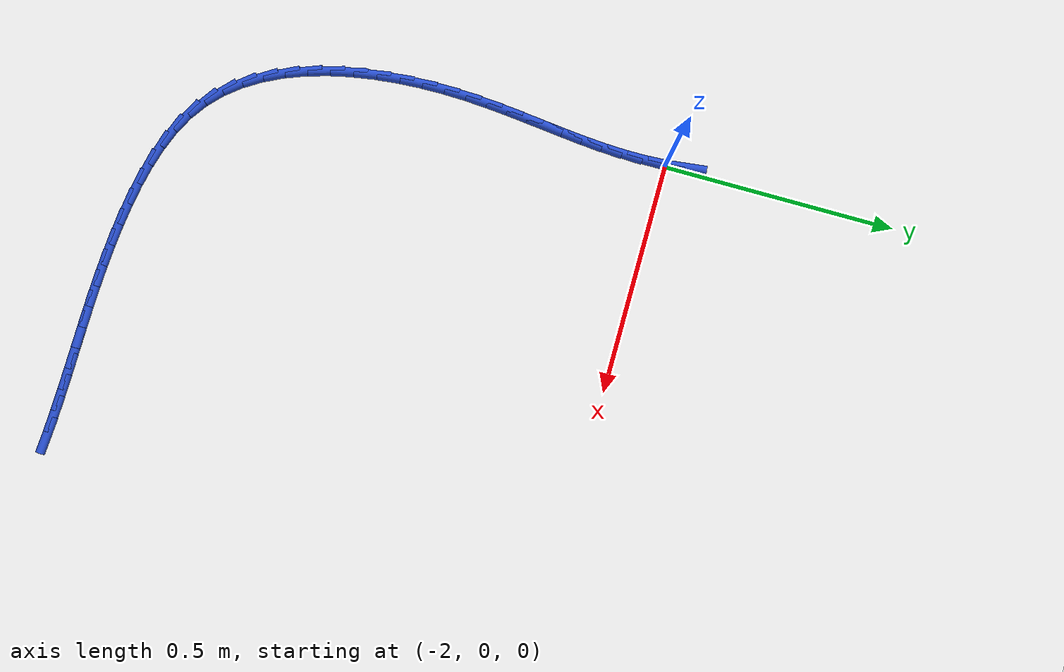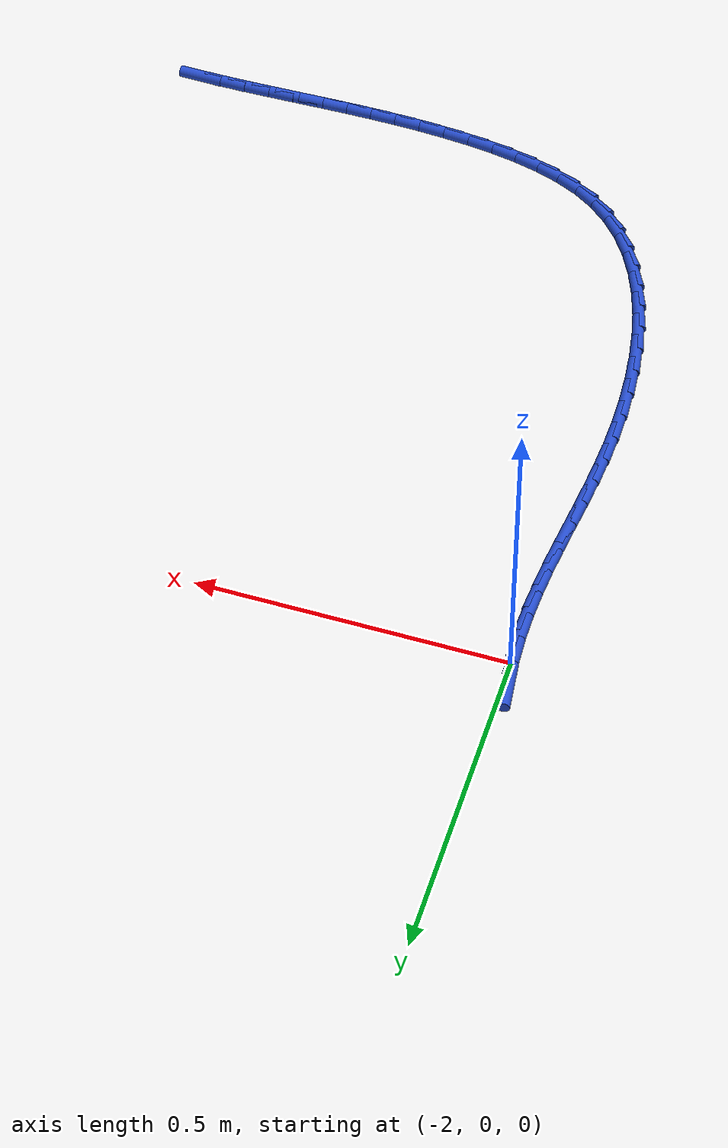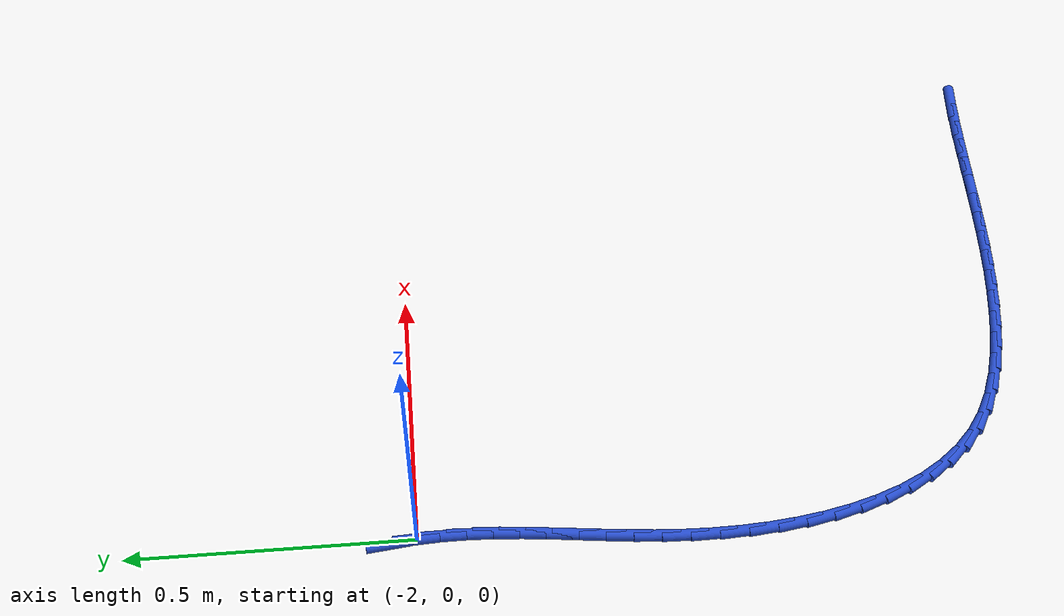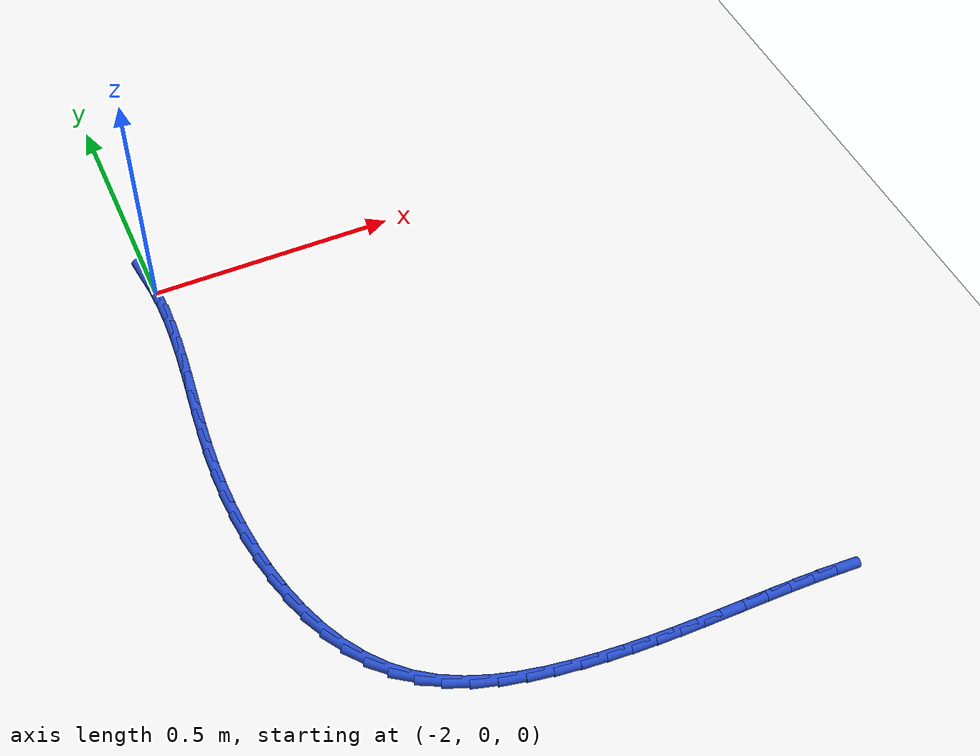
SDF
<sdf version="1.6">
 <world name="default">
  <model name="ground_plane">
   <static>1</static>
   <link name="link">
    <collision name="collision">
     <geometry><plane><normal>0 0 1</normal><size>100 100</size></plane></geometry>
     <surface><friction><ode><mu>100</mu><mu2>50</mu2></ode></friction></surface>
    </collision>
    <visual name="visual">
     <cast_shadows>0</cast_shadows>
     <geometry><plane><normal>0 0 1</normal><size>100 100</size></plane></geometry>
     <material>
      <script><uri>file://media/materials/scripts/gazebo.material</uri><name>Gazebo/WhiteGlow</name></script>
     </material>
    </visual>
   </link>
  </model>
  <model name="line">
   <link name="link_82">
    <pose>-2.008726880299085 0.04752699082449379 0.01 0 1.57 -1.4522595287237887</pose>
    <collision name="collision">
     <geometry><cylinder><radius>0.01</radius><length>0.08</length></cylinder></geometry>
    </collision>
    <visual name="visual">
     <material>
      <script><name>Gazebo/Blue</name><uri>file://media/materials/scripts/gazebo.material</uri></script>
     </material>
     <geometry><cylinder><radius>0.01</radius><length>0.08</length></cylinder></geometry>
    </visual>
   </link>
   <link name="link_83">
    <pose>-2.0032047574889873 0.0011596609506769394 0.01 0 1.57 -1.5134329677890233</pose>
    <collision name="collision">
     <geometry><cylinder><radius>0.01</radius><length>0.08</length></cylinder></geometry>
    </collision>
    <visual name="visual">
     <material>
      <script><name>Gazebo/Blue</name><uri>file://media/materials/scripts/gazebo.material</uri></script>
     </material>
     <geometry><cylinder><radius>0.01</radius><length>0.08</length></cylinder></geometry>
    </visual>
   </link>
   <link name="link_84">
    <pose>-2.0005794825921495 -0.04455584060456447 0.01 0 1.57 -1.5666211681387152</pose>
    <collision name="collision">
     <geometry><cylinder><radius>0.01</radius><length>0.08</length></cylinder></geometry>
    </collision>
    <visual name="visual">
     <material>
      <script><name>Gazebo/Blue</name><uri>file://media/materials/scripts/gazebo.material</uri></script>
     </material>
     <geometry><cylinder><radius>0.01</radius><length>0.08</length></cylinder></geometry>
    </visual>
   </link>
   <link name="link_85">
    <pose>-2.0003906035952994 -0.08979433688527738 0.01 0 1.57 1.5310484368386441</pose>
    <collision name="collision">
     <geometry><cylinder><radius>0.01</radius><length>0.08</length></cylinder></geometry>
    </collision>
    <visual name="visual">
     <material>
      <script><name>Gazebo/Blue</name><uri>file://media/materials/scripts/gazebo.material</uri></script>
     </material>
     <geometry><cylinder><radius>0.01</radius><length>0.08</length></cylinder></geometry>
    </visual>
   </link>
   <link name="link_86">
    <pose>-2.0021776684851638 -0.13473065093550868 0.01 0 1.57 1.4972262958728033</pose>
    <collision name="collision">
     <geometry><cylinder><radius>0.01</radius><length>0.08</length></cylinder></geometry>
    </collision>
    <visual name="visual">
     <material>
      <script><name>Gazebo/Blue</name><uri>file://media/materials/scripts/gazebo.material</uri></script>
     </material>
     <geometry><cylinder><radius>0.01</radius><length>0.08</length></cylinder></geometry>
    </visual>
   </link>
   <link name="link_87">
    <pose>-2.0054802252484683 -0.179539605799306 0.01 0 1.57 1.473954760836295</pose>
    <collision name="collision">
     <geometry><cylinder><radius>0.01</radius><length>0.08</length></cylinder></geometry>
    </collision>
    <visual name="visual">
     <material>
      <script><name>Gazebo/Blue</name><uri>file://media/materials/scripts/gazebo.material</uri></script>
     </material>
     <geometry><cylinder><radius>0.01</radius><length>0.08</length></cylinder></geometry>
    </visual>
   </link>
   <link name="link_88">
    <pose>-2.0098378218719395 -0.2243960245207146 0.01 0 1.57 1.4613786820729946</pose>
    <collision name="collision">
     <geometry><cylinder><radius>0.01</radius><length>0.08</length></cylinder></geometry>
    </collision>
    <visual name="visual">
     <material>
      <script><name>Gazebo/Blue</name><uri>file://media/materials/scripts/gazebo.material</uri></script>
     </material>
     <geometry><cylinder><radius>0.01</radius><length>0.08</length></cylinder></geometry>
    </visual>
   </link>
   <link name="link_89">
    <pose>-2.014790006342306 -0.26947473014378237 0.01 0 1.57 1.4594125373669866</pose>
    <collision name="collision">
     <geometry><cylinder><radius>0.01</radius><length>0.08</length></cylinder></geometry>
    </collision>
    <visual name="visual">
     <material>
      <script><name>Gazebo/Blue</name><uri>file://media/materials/scripts/gazebo.material</uri></script>
     </material>
     <geometry><cylinder><radius>0.01</radius><length>0.08</length></cylinder></geometry>
    </visual>
   </link>
   <link name="link_90">
    <pose>-2.019876326646292 -0.314950545712556 0.01 0 1.57 1.467791126929945</pose>
    <collision name="collision">
     <geometry><cylinder><radius>0.01</radius><length>0.08</length></cylinder></geometry>
    </collision>
    <visual name="visual">
     <material>
      <script><name>Gazebo/Blue</name><uri>file://media/materials/scripts/gazebo.material</uri></script>
     </material>
     <geometry><cylinder><radius>0.01</radius><length>0.08</length></cylinder></geometry>
    </visual>
   </link>
   <link name="link_91">
    <pose>-2.024636330770625 -0.36099829427108243 0.01 0 1.57 1.486091320437524</pose>
    <collision name="collision">
     <geometry><cylinder><radius>0.01</radius><length>0.08</length></cylinder></geometry>
    </collision>
    <visual name="visual">
     <material>
      <script><name>Gazebo/Blue</name><uri>file://media/materials/scripts/gazebo.material</uri></script>
     </material>
     <geometry><cylinder><radius>0.01</radius><length>0.08</length></cylinder></geometry>
    </visual>
   </link>
   <link name="link_92">
    <pose>-2.0286095667020327 -0.40779279886340947 0.01 0 1.57 1.5137284460687557</pose>
    <collision name="collision">
     <geometry><cylinder><radius>0.01</radius><length>0.08</length></cylinder></geometry>
    </collision>
    <visual name="visual">
     <material>
      <script><name>Gazebo/Blue</name><uri>file://media/materials/scripts/gazebo.material</uri></script>
     </material>
     <geometry><cylinder><radius>0.01</radius><length>0.08</length></cylinder></geometry>
    </visual>
   </link>
   <link name="link_93">
    <pose>-2.031335582427241 -0.4555088825335821 0.01 0 1.57 1.5498265325159046</pose>
    <collision name="collision">
     <geometry><cylinder><radius>0.01</radius><length>0.08</length></cylinder></geometry>
    </collision>
    <visual name="visual">
     <material>
      <script><name>Gazebo/Blue</name><uri>file://media/materials/scripts/gazebo.material</uri></script>
     </material>
     <geometry><cylinder><radius>0.01</radius><length>0.08</length></cylinder></geometry>
    </visual>
   </link>
   <link name="link_94">
    <pose>-2.0323590312181627 -0.5043075859649069 0.01 0 1.57 -1.550459317505168</pose>
    <collision name="collision">
     <geometry><cylinder><radius>0.01</radius><length>0.08</length></cylinder></geometry>
    </collision>
    <visual name="visual">
     <material>
      <script><name>Gazebo/Blue</name><uri>file://media/materials/scripts/gazebo.material</uri></script>
     </material>
     <geometry><cylinder><radius>0.01</radius><length>0.08</length></cylinder></geometry>
    </visual>
   </link>
   <link name="link_95">
    <pose>-2.0313479540760384 -0.55401684911581 0.01 0 1.57 -1.5060086516736975</pose>
    <collision name="collision">
     <geometry><cylinder><radius>0.01</radius><length>0.08</length></cylinder></geometry>
    </collision>
    <visual name="visual">
     <material>
      <script><name>Gazebo/Blue</name><uri>file://media/materials/scripts/gazebo.material</uri></script>
     </material>
     <geometry><cylinder><radius>0.01</radius><length>0.08</length></cylinder></geometry>
    </visual>
   </link>
   <link name="link_96">
    <pose>-2.0280971882047387 -0.6041223096165977 0.01 0 1.57 -1.4574234662155516</pose>
    <collision name="collision">
     <geometry><cylinder><radius>0.01</radius><length>0.08</length></cylinder></geometry>
    </collision>
    <visual name="visual">
     <material>
      <script><name>Gazebo/Blue</name><uri>file://media/materials/scripts/gazebo.material</uri></script>
     </material>
     <geometry><cylinder><radius>0.01</radius><length>0.08</length></cylinder></geometry>
    </visual>
   </link>
   <link name="link_97">
    <pose>-2.022407357946668 -0.6540939819878034 0.01 0 1.57 -1.4034721893111808</pose>
    <collision name="collision">
     <geometry><cylinder><radius>0.01</radius><length>0.08</length></cylinder></geometry>
    </collision>
    <visual name="visual">
     <material>
      <script><name>Gazebo/Blue</name><uri>file://media/materials/scripts/gazebo.material</uri></script>
     </material>
     <geometry><cylinder><radius>0.01</radius><length>0.08</length></cylinder></geometry>
    </visual>
   </link>
   <link name="link_98">
    <pose>-2.01407908764423 -0.7034018807499629 0.01 0 1.57 -1.3427581451526265</pose>
    <collision name="collision">
     <geometry><cylinder><radius>0.01</radius><length>0.08</length></cylinder></geometry>
    </collision>
    <visual name="visual">
     <material>
      <script><name>Gazebo/Blue</name><uri>file://media/materials/scripts/gazebo.material</uri></script>
     </material>
     <geometry><cylinder><radius>0.01</radius><length>0.08</length></cylinder></geometry>
    </visual>
   </link>
   <link name="link_99">
    <pose>-2.0029130016398264 -0.75151602042361 0.01 0 1.57 -1.2736900160090785</pose>
    <collision name="collision">
     <geometry><cylinder><radius>0.01</radius><length>0.08</length></cylinder></geometry>
    </collision>
    <visual name="visual">
     <material>
      <script><name>Gazebo/Blue</name><uri>file://media/materials/scripts/gazebo.material</uri></script>
     </material>
     <geometry><cylinder><radius>0.01</radius><length>0.08</length></cylinder></geometry>
    </visual>
   </link>
   <link name="link_100">
    <pose>-1.9887097242758618 -0.7979064155292802 0.01 0 1.57 -1.1944928344011243</pose>
    <collision name="collision">
     <geometry><cylinder><radius>0.01</radius><length>0.08</length></cylinder></geometry>
    </collision>
    <visual name="visual">
     <material>
      <script><name>Gazebo/Blue</name><uri>file://media/materials/scripts/gazebo.material</uri></script>
     </material>
     <geometry><cylinder><radius>0.01</radius><length>0.08</length></cylinder></geometry>
    </visual>
   </link>
   <link name="link_101">
    <pose>-1.9712698798947392 -0.8420430805875091 0.01 0 1.57 -1.1033003288801815</pose>
    <collision name="collision">
     <geometry><cylinder><radius>0.01</radius><length>0.08</length></cylinder></geometry>
    </collision>
    <visual name="visual">
     <material>
      <script><name>Gazebo/Blue</name><uri>file://media/materials/scripts/gazebo.material</uri></script>
     </material>
     <geometry><cylinder><radius>0.01</radius><length>0.08</length></cylinder></geometry>
    </visual>
   </link>
   <link name="link_102">
    <pose>-1.9503940928388621 -0.8833960301188293 0.01 0 1.57 -0.9983936686877478</pose>
    <collision name="collision">
     <geometry><cylinder><radius>0.01</radius><length>0.08</length></cylinder></geometry>
    </collision>
    <visual name="visual">
     <material>
      <script><name>Gazebo/Blue</name><uri>file://media/materials/scripts/gazebo.material</uri></script>
     </material>
     <geometry><cylinder><radius>0.01</radius><length>0.08</length></cylinder></geometry>
    </visual>
   </link>
   <link name="link_103">
    <pose>-1.9258829874506342 -0.9214352786437768 0.01 0 1.57 -0.8786611227223863</pose>
    <collision name="collision">
     <geometry><cylinder><radius>0.01</radius><length>0.08</length></cylinder></geometry>
    </collision>
    <visual name="visual">
     <material>
      <script><name>Gazebo/Blue</name><uri>file://media/materials/scripts/gazebo.material</uri></script>
     </material>
     <geometry><cylinder><radius>0.01</radius><length>0.08</length></cylinder></geometry>
    </visual>
   </link>
   <link name="link_104">
    <pose>-1.897537188072458 -0.9556308406828864 0.01 0 1.57 -0.7442974219793101</pose>
    <collision name="collision">
     <geometry><cylinder><radius>0.01</radius><length>0.08</length></cylinder></geometry>
    </collision>
    <visual name="visual">
     <material>
      <script><name>Gazebo/Blue</name><uri>file://media/materials/scripts/gazebo.material</uri></script>
     </material>
     <geometry><cylinder><radius>0.01</radius><length>0.08</length></cylinder></geometry>
    </visual>
   </link>
   <link name="link_105">
    <pose>-1.8651573190467372 -0.9854527307566923 0.01 0 1.57 -0.5992207532148043</pose>
    <collision name="collision">
     <geometry><cylinder><radius>0.01</radius><length>0.08</length></cylinder></geometry>
    </collision>
    <visual name="visual">
     <material>
      <script><name>Gazebo/Blue</name><uri>file://media/materials/scripts/gazebo.material</uri></script>
     </material>
     <geometry><cylinder><radius>0.01</radius><length>0.08</length></cylinder></geometry>
    </visual>
   </link>
   <link name="link_106">
    <pose>-1.828594224812803 -1.0104250846201497 0.01 0 1.57 -0.46608468973641887</pose>
    <collision name="collision">
     <geometry><cylinder><radius>0.01</radius><length>0.08</length></cylinder></geometry>
    </collision>
    <visual name="visual">
     <material>
      <script><name>Gazebo/Blue</name><uri>file://media/materials/scripts/gazebo.material</uri></script>
     </material>
     <geometry><cylinder><radius>0.01</radius><length>0.08</length></cylinder></geometry>
    </visual>
   </link>
   <link name="link_107">
    <pose>-1.7882842500460694 -1.0307030203932006 0.01 0 1.57 -0.35736798985334184</pose>
    <collision name="collision">
     <geometry><cylinder><radius>0.01</radius><length>0.08</length></cylinder></geometry>
    </collision>
    <visual name="visual">
     <material>
      <script><name>Gazebo/Blue</name><uri>file://media/materials/scripts/gazebo.material</uri></script>
     </material>
     <geometry><cylinder><radius>0.01</radius><length>0.08</length></cylinder></geometry>
    </visual>
   </link>
   <link name="link_108">
    <pose>-1.7450422863058541 -1.0468496089058736 0.01 0 1.57 -0.2706842790103173</pose>
    <collision name="collision">
     <geometry><cylinder><radius>0.01</radius><length>0.08</length></cylinder></geometry>
    </collision>
    <visual name="visual">
     <material>
      <script><name>Gazebo/Blue</name><uri>file://media/materials/scripts/gazebo.material</uri></script>
     </material>
     <geometry><cylinder><radius>0.01</radius><length>0.08</length></cylinder></geometry>
    </visual>
   </link>
   <link name="link_109">
    <pose>-1.6996895705224537 -1.0594347592726943 0.01 0 1.57 -0.2028561715625097</pose>
    <collision name="collision">
     <geometry><cylinder><radius>0.01</radius><length>0.08</length></cylinder></geometry>
    </collision>
    <visual name="visual">
     <material>
      <script><name>Gazebo/Blue</name><uri>file://media/materials/scripts/gazebo.material</uri></script>
     </material>
     <geometry><cylinder><radius>0.01</radius><length>0.08</length></cylinder></geometry>
    </visual>
   </link>
   <link name="link_110">
    <pose>-1.653047339626166 -1.0690283806081877 0.01 0 1.57 -0.1510778074019528</pose>
    <collision name="collision">
     <geometry><cylinder><radius>0.01</radius><length>0.08</length></cylinder></geometry>
    </collision>
    <visual name="visual">
     <material>
      <script><name>Gazebo/Blue</name><uri>file://media/materials/scripts/gazebo.material</uri></script>
     </material>
     <geometry><cylinder><radius>0.01</radius><length>0.08</length></cylinder></geometry>
    </visual>
   </link>
   <link name="link_111">
    <pose>-1.605936830547287 -1.0762003820268795 0.01 0 1.57 -0.11278991348390137</pose>
    <collision name="collision">
     <geometry><cylinder><radius>0.01</radius><length>0.08</length></cylinder></geometry>
    </collision>
    <visual name="visual">
     <material>
      <script><name>Gazebo/Blue</name><uri>file://media/materials/scripts/gazebo.material</uri></script>
     </material>
     <geometry><cylinder><radius>0.01</radius><length>0.08</length></cylinder></geometry>
    </visual>
   </link>
   <link name="link_112">
    <pose>-1.5591261314909306 -1.0815026602407505 0.01 0 1.57 -0.0818393585840511</pose>
    <collision name="collision">
     <geometry><cylinder><radius>0.01</radius><length>0.08</length></cylinder></geometry>
    </collision>
    <visual name="visual">
     <material>
      <script><name>Gazebo/Blue</name><uri>file://media/materials/scripts/gazebo.material</uri></script>
     </material>
     <geometry><cylinder><radius>0.01</radius><length>0.08</length></cylinder></geometry>
    </visual>
   </link>
   <link name="link_113">
    <pose>-1.5128309560181423 -1.0852999090813884 0.01 0 1.57 -0.05541975274387008</pose>
    <collision name="collision">
     <geometry><cylinder><radius>0.01</radius><length>0.08</length></cylinder></geometry>
    </collision>
    <visual name="visual">
     <material>
      <script><name>Gazebo/Blue</name><uri>file://media/materials/scripts/gazebo.material</uri></script>
     </material>
     <geometry><cylinder><radius>0.01</radius><length>0.08</length></cylinder></geometry>
    </visual>
   </link>
   <link name="link_114">
    <pose>-1.466939460497508 -1.0878458114015428 0.01 0 1.57 -0.03390470617174254</pose>
    <collision name="collision">
     <geometry><cylinder><radius>0.01</radius><length>0.08</length></cylinder></geometry>
    </collision>
    <visual name="visual">
     <material>
      <script><name>Gazebo/Blue</name><uri>file://media/materials/scripts/gazebo.material</uri></script>
     </material>
     <geometry><cylinder><radius>0.01</radius><length>0.08</length></cylinder></geometry>
    </visual>
   </link>
   <link name="link_115">
    <pose>-1.421335501872485 -1.0893925929545543 0.01 0 1.57 -0.017604198902374947</pose>
    <collision name="collision">
     <geometry><cylinder><radius>0.01</radius><length>0.08</length></cylinder></geometry>
    </collision>
    <visual name="visual">
     <material>
      <script><name>Gazebo/Blue</name><uri>file://media/materials/scripts/gazebo.material</uri></script>
     </material>
     <geometry><cylinder><radius>0.01</radius><length>0.08</length></cylinder></geometry>
    </visual>
   </link>
   <link name="link_116">
    <pose>-1.3759029370865306 -1.0901924794937627 0.01 0 1.57 -0.006726107146378662</pose>
    <collision name="collision">
     <geometry><cylinder><radius>0.01</radius><length>0.08</length></cylinder></geometry>
    </collision>
    <visual name="visual">
     <material>
      <script><name>Gazebo/Blue</name><uri>file://media/materials/scripts/gazebo.material</uri></script>
     </material>
     <geometry><cylinder><radius>0.01</radius><length>0.08</length></cylinder></geometry>
    </visual>
   </link>
   <link name="link_117">
    <pose>-1.330525623083104 -1.0904976967725077 0.01 0 1.57 -0.0013815187004142062</pose>
    <collision name="collision">
     <geometry><cylinder><radius>0.01</radius><length>0.08</length></cylinder></geometry>
    </collision>
    <visual name="visual">
     <material>
      <script><name>Gazebo/Blue</name><uri>file://media/materials/scripts/gazebo.material</uri></script>
     </material>
     <geometry><cylinder><radius>0.01</radius><length>0.08</length></cylinder></geometry>
    </visual>
   </link>
   <link name="link_118">
    <pose>-1.285087416805662 -1.0905604705441299 0.01 0 1.57 -0.0015906077462704568</pose>
    <collision name="collision">
     <geometry><cylinder><radius>0.01</radius><length>0.08</length></cylinder></geometry>
    </collision>
    <visual name="visual">
     <material>
      <script><name>Gazebo/Blue</name><uri>file://media/materials/scripts/gazebo.material</uri></script>
     </material>
     <geometry><cylinder><radius>0.01</radius><length>0.08</length></cylinder></geometry>
    </visual>
   </link>
   <link name="link_119">
    <pose>-1.2394721751976634 -1.0906330265619693 0.01 0 1.57 -0.007287510542872682</pose>
    <collision name="collision">
     <geometry><cylinder><radius>0.01</radius><length>0.08</length></cylinder></geometry>
    </collision>
    <visual name="visual">
     <material>
      <script><name>Gazebo/Blue</name><uri>file://media/materials/scripts/gazebo.material</uri></script>
     </material>
     <geometry><cylinder><radius>0.01</radius><length>0.08</length></cylinder></geometry>
    </visual>
   </link>
   <link name="link_120">
    <pose>-1.193563755202565 -1.0909675905793652 0.01 0 1.57 -0.018323492188613184</pose>
    <collision name="collision">
     <geometry><cylinder><radius>0.01</radius><length>0.08</length></cylinder></geometry>
    </collision>
    <visual name="visual">
     <material>
      <script><name>Gazebo/Blue</name><uri>file://media/materials/scripts/gazebo.material</uri></script>
     </material>
     <geometry><cylinder><radius>0.01</radius><length>0.08</length></cylinder></geometry>
    </visual>
   </link>
   <link name="link_121">
    <pose>-1.1472460137638247 -1.0918163883496592 0.01 0 1.57 -0.03446855329202941</pose>
    <collision name="collision">
     <geometry><cylinder><radius>0.01</radius><length>0.08</length></cylinder></geometry>
    </collision>
    <visual name="visual">
     <material>
      <script><name>Gazebo/Blue</name><uri>file://media/materials/scripts/gazebo.material</uri></script>
     </material>
     <geometry><cylinder><radius>0.01</radius><length>0.08</length></cylinder></geometry>
    </visual>
   </link>
   <link name="link_122">
    <pose>-1.100402807824901 -1.0934316456261897 0.01 0 1.57 -0.05523482125030368</pose>
    <collision name="collision">
     <geometry><cylinder><radius>0.01</radius><length>0.08</length></cylinder></geometry>
    </collision>
    <visual name="visual">
     <material>
      <script><name>Gazebo/Blue</name><uri>file://media/materials/scripts/gazebo.material</uri></script>
     </material>
     <geometry><cylinder><radius>0.01</radius><length>0.08</length></cylinder></geometry>
    </visual>
   </link>
  </model>
 </world>
</sdf>
